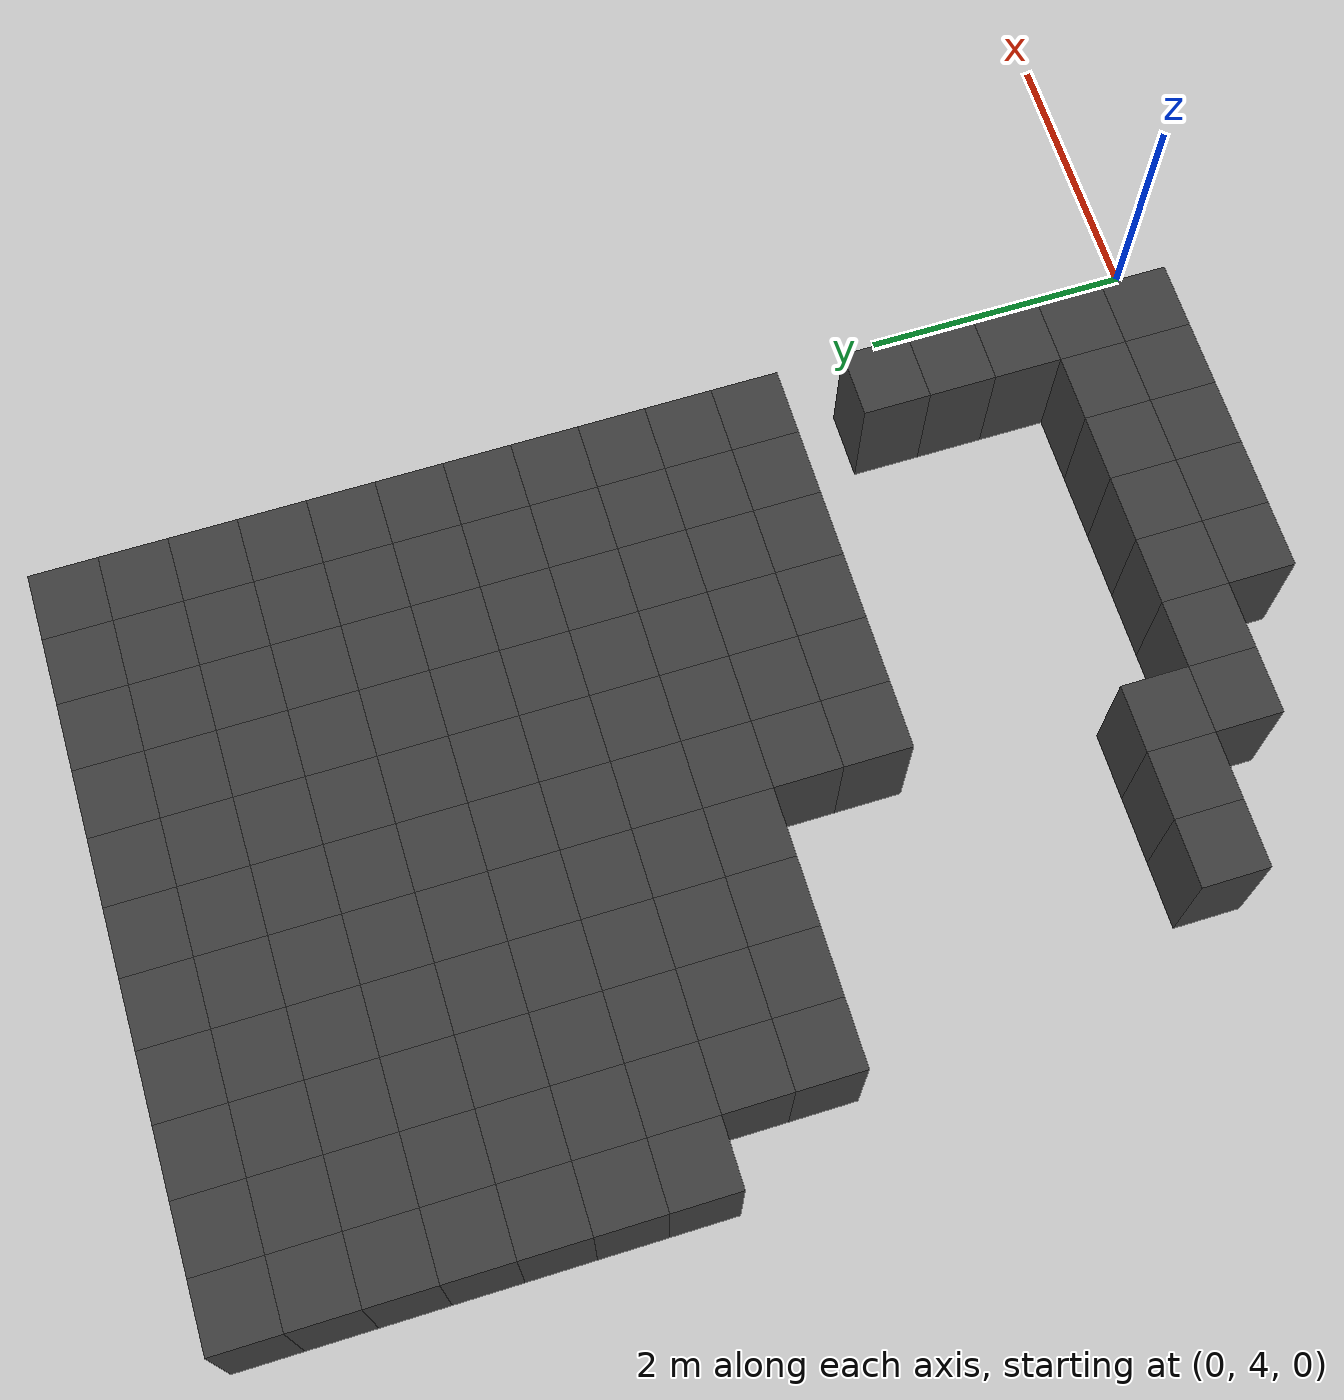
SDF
<sdf version="1.7">
 <world name="map_11672">
  <model name="ground_plane">
   <static>true</static>
   <link name="link">
    <collision name="collision">
     <geometry><plane><normal>0 0 1</normal><size>200 200</size></plane></geometry>
    </collision>
    <visual name="visual">
     <geometry><plane><normal>0 0 1</normal><size>200 200</size></plane></geometry>
     <material><ambient>0.8 0.8 0.8 1</ambient><diffuse>0.8 0.8 0.8 1</diffuse></material>
    </visual>
   </link>
  </model>
  <model name="maze_environment">
   <static>true</static>
   <link name="wall_13">
    <pose>-5.750 12.250 0.500 0 0 0</pose>
    <collision name="col"><geometry><box><size>0.5 0.5 1.0</size></box></geometry></collision>
    <visual name="vis">
     <geometry><box><size>0.5 0.5 1.0</size></box></geometry>
     <material><ambient>0.15 0.15 0.15 1</ambient><diffuse>0.25 0.25 0.25 1</diffuse></material>
    </visual>
   </link>
   <link name="wall_14">
    <pose>-5.250 12.250 0.500 0 0 0</pose>
    <collision name="col"><geometry><box><size>0.5 0.5 1.0</size></box></geometry></collision>
    <visual name="vis">
     <geometry><box><size>0.5 0.5 1.0</size></box></geometry>
     <material><ambient>0.15 0.15 0.15 1</ambient><diffuse>0.25 0.25 0.25 1</diffuse></material>
    </visual>
   </link>
   <link name="wall_15">
    <pose>-4.750 12.250 0.500 0 0 0</pose>
    <collision name="col"><geometry><box><size>0.5 0.5 1.0</size></box></geometry></collision>
    <visual name="vis">
     <geometry><box><size>0.5 0.5 1.0</size></box></geometry>
     <material><ambient>0.15 0.15 0.15 1</ambient><diffuse>0.25 0.25 0.25 1</diffuse></material>
    </visual>
   </link>
   <link name="wall_16">
    <pose>-4.250 12.250 0.500 0 0 0</pose>
    <collision name="col"><geometry><box><size>0.5 0.5 1.0</size></box></geometry></collision>
    <visual name="vis">
     <geometry><box><size>0.5 0.5 1.0</size></box></geometry>
     <material><ambient>0.15 0.15 0.15 1</ambient><diffuse>0.25 0.25 0.25 1</diffuse></material>
    </visual>
   </link>
   <link name="wall_17">
    <pose>-3.750 12.250 0.500 0 0 0</pose>
    <collision name="col"><geometry><box><size>0.5 0.5 1.0</size></box></geometry></collision>
    <visual name="vis">
     <geometry><box><size>0.5 0.5 1.0</size></box></geometry>
     <material><ambient>0.15 0.15 0.15 1</ambient><diffuse>0.25 0.25 0.25 1</diffuse></material>
    </visual>
   </link>
   <link name="wall_18">
    <pose>-3.250 12.250 0.500 0 0 0</pose>
    <collision name="col"><geometry><box><size>0.5 0.5 1.0</size></box></geometry></collision>
    <visual name="vis">
     <geometry><box><size>0.5 0.5 1.0</size></box></geometry>
     <material><ambient>0.15 0.15 0.15 1</ambient><diffuse>0.25 0.25 0.25 1</diffuse></material>
    </visual>
   </link>
   <link name="wall_19">
    <pose>-2.750 12.250 0.500 0 0 0</pose>
    <collision name="col"><geometry><box><size>0.5 0.5 1.0</size></box></geometry></collision>
    <visual name="vis">
     <geometry><box><size>0.5 0.5 1.0</size></box></geometry>
     <material><ambient>0.15 0.15 0.15 1</ambient><diffuse>0.25 0.25 0.25 1</diffuse></material>
    </visual>
   </link>
   <link name="wall_20">
    <pose>-2.250 12.250 0.500 0 0 0</pose>
    <collision name="col"><geometry><box><size>0.5 0.5 1.0</size></box></geometry></collision>
    <visual name="vis">
     <geometry><box><size>0.5 0.5 1.0</size></box></geometry>
     <material><ambient>0.15 0.15 0.15 1</ambient><diffuse>0.25 0.25 0.25 1</diffuse></material>
    </visual>
   </link>
   <link name="wall_21">
    <pose>-1.750 12.250 0.500 0 0 0</pose>
    <collision name="col"><geometry><box><size>0.5 0.5 1.0</size></box></geometry></collision>
    <visual name="vis">
     <geometry><box><size>0.5 0.5 1.0</size></box></geometry>
     <material><ambient>0.15 0.15 0.15 1</ambient><diffuse>0.25 0.25 0.25 1</diffuse></material>
    </visual>
   </link>
   <link name="wall_22">
    <pose>-1.250 12.250 0.500 0 0 0</pose>
    <collision name="col"><geometry><box><size>0.5 0.5 1.0</size></box></geometry></collision>
    <visual name="vis">
     <geometry><box><size>0.5 0.5 1.0</size></box></geometry>
     <material><ambient>0.15 0.15 0.15 1</ambient><diffuse>0.25 0.25 0.25 1</diffuse></material>
    </visual>
   </link>
   <link name="wall_23">
    <pose>-0.750 12.250 0.500 0 0 0</pose>
    <collision name="col"><geometry><box><size>0.5 0.5 1.0</size></box></geometry></collision>
    <visual name="vis">
     <geometry><box><size>0.5 0.5 1.0</size></box></geometry>
     <material><ambient>0.15 0.15 0.15 1</ambient><diffuse>0.25 0.25 0.25 1</diffuse></material>
    </visual>
   </link>
   <link name="wall_60">
    <pose>-5.750 11.750 0.500 0 0 0</pose>
    <collision name="col"><geometry><box><size>0.5 0.5 1.0</size></box></geometry></collision>
    <visual name="vis">
     <geometry><box><size>0.5 0.5 1.0</size></box></geometry>
     <material><ambient>0.15 0.15 0.15 1</ambient><diffuse>0.25 0.25 0.25 1</diffuse></material>
    </visual>
   </link>
   <link name="wall_61">
    <pose>-5.250 11.750 0.500 0 0 0</pose>
    <collision name="col"><geometry><box><size>0.5 0.5 1.0</size></box></geometry></collision>
    <visual name="vis">
     <geometry><box><size>0.5 0.5 1.0</size></box></geometry>
     <material><ambient>0.15 0.15 0.15 1</ambient><diffuse>0.25 0.25 0.25 1</diffuse></material>
    </visual>
   </link>
   <link name="wall_62">
    <pose>-4.750 11.750 0.500 0 0 0</pose>
    <collision name="col"><geometry><box><size>0.5 0.5 1.0</size></box></geometry></collision>
    <visual name="vis">
     <geometry><box><size>0.5 0.5 1.0</size></box></geometry>
     <material><ambient>0.15 0.15 0.15 1</ambient><diffuse>0.25 0.25 0.25 1</diffuse></material>
    </visual>
   </link>
   <link name="wall_63">
    <pose>-4.250 11.750 0.500 0 0 0</pose>
    <collision name="col"><geometry><box><size>0.5 0.5 1.0</size></box></geometry></collision>
    <visual name="vis">
     <geometry><box><size>0.5 0.5 1.0</size></box></geometry>
     <material><ambient>0.15 0.15 0.15 1</ambient><diffuse>0.25 0.25 0.25 1</diffuse></material>
    </visual>
   </link>
   <link name="wall_64">
    <pose>-3.750 11.750 0.500 0 0 0</pose>
    <collision name="col"><geometry><box><size>0.5 0.5 1.0</size></box></geometry></collision>
    <visual name="vis">
     <geometry><box><size>0.5 0.5 1.0</size></box></geometry>
     <material><ambient>0.15 0.15 0.15 1</ambient><diffuse>0.25 0.25 0.25 1</diffuse></material>
    </visual>
   </link>
   <link name="wall_65">
    <pose>-3.250 11.750 0.500 0 0 0</pose>
    <collision name="col"><geometry><box><size>0.5 0.5 1.0</size></box></geometry></collision>
    <visual name="vis">
     <geometry><box><size>0.5 0.5 1.0</size></box></geometry>
     <material><ambient>0.15 0.15 0.15 1</ambient><diffuse>0.25 0.25 0.25 1</diffuse></material>
    </visual>
   </link>
   <link name="wall_66">
    <pose>-2.750 11.750 0.500 0 0 0</pose>
    <collision name="col"><geometry><box><size>0.5 0.5 1.0</size></box></geometry></collision>
    <visual name="vis">
     <geometry><box><size>0.5 0.5 1.0</size></box></geometry>
     <material><ambient>0.15 0.15 0.15 1</ambient><diffuse>0.25 0.25 0.25 1</diffuse></material>
    </visual>
   </link>
   <link name="wall_67">
    <pose>-2.250 11.750 0.500 0 0 0</pose>
    <collision name="col"><geometry><box><size>0.5 0.5 1.0</size></box></geometry></collision>
    <visual name="vis">
     <geometry><box><size>0.5 0.5 1.0</size></box></geometry>
     <material><ambient>0.15 0.15 0.15 1</ambient><diffuse>0.25 0.25 0.25 1</diffuse></material>
    </visual>
   </link>
   <link name="wall_68">
    <pose>-1.750 11.750 0.500 0 0 0</pose>
    <collision name="col"><geometry><box><size>0.5 0.5 1.0</size></box></geometry></collision>
    <visual name="vis">
     <geometry><box><size>0.5 0.5 1.0</size></box></geometry>
     <material><ambient>0.15 0.15 0.15 1</ambient><diffuse>0.25 0.25 0.25 1</diffuse></material>
    </visual>
   </link>
   <link name="wall_69">
    <pose>-1.250 11.750 0.500 0 0 0</pose>
    <collision name="col"><geometry><box><size>0.5 0.5 1.0</size></box></geometry></collision>
    <visual name="vis">
     <geometry><box><size>0.5 0.5 1.0</size></box></geometry>
     <material><ambient>0.15 0.15 0.15 1</ambient><diffuse>0.25 0.25 0.25 1</diffuse></material>
    </visual>
   </link>
   <link name="wall_70">
    <pose>-0.750 11.750 0.500 0 0 0</pose>
    <collision name="col"><geometry><box><size>0.5 0.5 1.0</size></box></geometry></collision>
    <visual name="vis">
     <geometry><box><size>0.5 0.5 1.0</size></box></geometry>
     <material><ambient>0.15 0.15 0.15 1</ambient><diffuse>0.25 0.25 0.25 1</diffuse></material>
    </visual>
   </link>
   <link name="wall_107">
    <pose>-5.750 11.250 0.500 0 0 0</pose>
    <collision name="col"><geometry><box><size>0.5 0.5 1.0</size></box></geometry></collision>
    <visual name="vis">
     <geometry><box><size>0.5 0.5 1.0</size></box></geometry>
     <material><ambient>0.15 0.15 0.15 1</ambient><diffuse>0.25 0.25 0.25 1</diffuse></material>
    </visual>
   </link>
   <link name="wall_108">
    <pose>-5.250 11.250 0.500 0 0 0</pose>
    <collision name="col"><geometry><box><size>0.5 0.5 1.0</size></box></geometry></collision>
    <visual name="vis">
     <geometry><box><size>0.5 0.5 1.0</size></box></geometry>
     <material><ambient>0.15 0.15 0.15 1</ambient><diffuse>0.25 0.25 0.25 1</diffuse></material>
    </visual>
   </link>
   <link name="wall_109">
    <pose>-4.750 11.250 0.500 0 0 0</pose>
    <collision name="col"><geometry><box><size>0.5 0.5 1.0</size></box></geometry></collision>
    <visual name="vis">
     <geometry><box><size>0.5 0.5 1.0</size></box></geometry>
     <material><ambient>0.15 0.15 0.15 1</ambient><diffuse>0.25 0.25 0.25 1</diffuse></material>
    </visual>
   </link>
   <link name="wall_110">
    <pose>-4.250 11.250 0.500 0 0 0</pose>
    <collision name="col"><geometry><box><size>0.5 0.5 1.0</size></box></geometry></collision>
    <visual name="vis">
     <geometry><box><size>0.5 0.5 1.0</size></box></geometry>
     <material><ambient>0.15 0.15 0.15 1</ambient><diffuse>0.25 0.25 0.25 1</diffuse></material>
    </visual>
   </link>
   <link name="wall_111">
    <pose>-3.750 11.250 0.500 0 0 0</pose>
    <collision name="col"><geometry><box><size>0.5 0.5 1.0</size></box></geometry></collision>
    <visual name="vis">
     <geometry><box><size>0.5 0.5 1.0</size></box></geometry>
     <material><ambient>0.15 0.15 0.15 1</ambient><diffuse>0.25 0.25 0.25 1</diffuse></material>
    </visual>
   </link>
   <link name="wall_112">
    <pose>-3.250 11.250 0.500 0 0 0</pose>
    <collision name="col"><geometry><box><size>0.5 0.5 1.0</size></box></geometry></collision>
    <visual name="vis">
     <geometry><box><size>0.5 0.5 1.0</size></box></geometry>
     <material><ambient>0.15 0.15 0.15 1</ambient><diffuse>0.25 0.25 0.25 1</diffuse></material>
    </visual>
   </link>
   <link name="wall_113">
    <pose>-2.750 11.250 0.500 0 0 0</pose>
    <collision name="col"><geometry><box><size>0.5 0.5 1.0</size></box></geometry></collision>
    <visual name="vis">
     <geometry><box><size>0.5 0.5 1.0</size></box></geometry>
     <material><ambient>0.15 0.15 0.15 1</ambient><diffuse>0.25 0.25 0.25 1</diffuse></material>
    </visual>
   </link>
   <link name="wall_114">
    <pose>-2.250 11.250 0.500 0 0 0</pose>
    <collision name="col"><geometry><box><size>0.5 0.5 1.0</size></box></geometry></collision>
    <visual name="vis">
     <geometry><box><size>0.5 0.5 1.0</size></box></geometry>
     <material><ambient>0.15 0.15 0.15 1</ambient><diffuse>0.25 0.25 0.25 1</diffuse></material>
    </visual>
   </link>
   <link name="wall_115">
    <pose>-1.750 11.250 0.500 0 0 0</pose>
    <collision name="col"><geometry><box><size>0.5 0.5 1.0</size></box></geometry></collision>
    <visual name="vis">
     <geometry><box><size>0.5 0.5 1.0</size></box></geometry>
     <material><ambient>0.15 0.15 0.15 1</ambient><diffuse>0.25 0.25 0.25 1</diffuse></material>
    </visual>
   </link>
   <link name="wall_116">
    <pose>-1.250 11.250 0.500 0 0 0</pose>
    <collision name="col"><geometry><box><size>0.5 0.5 1.0</size></box></geometry></collision>
    <visual name="vis">
     <geometry><box><size>0.5 0.5 1.0</size></box></geometry>
     <material><ambient>0.15 0.15 0.15 1</ambient><diffuse>0.25 0.25 0.25 1</diffuse></material>
    </visual>
   </link>
   <link name="wall_117">
    <pose>-0.750 11.250 0.500 0 0 0</pose>
    <collision name="col"><geometry><box><size>0.5 0.5 1.0</size></box></geometry></collision>
    <visual name="vis">
     <geometry><box><size>0.5 0.5 1.0</size></box></geometry>
     <material><ambient>0.15 0.15 0.15 1</ambient><diffuse>0.25 0.25 0.25 1</diffuse></material>
    </visual>
   </link>
   <link name="wall_154">
    <pose>-5.750 10.750 0.500 0 0 0</pose>
    <collision name="col"><geometry><box><size>0.5 0.5 1.0</size></box></geometry></collision>
    <visual name="vis">
     <geometry><box><size>0.5 0.5 1.0</size></box></geometry>
     <material><ambient>0.15 0.15 0.15 1</ambient><diffuse>0.25 0.25 0.25 1</diffuse></material>
    </visual>
   </link>
   <link name="wall_155">
    <pose>-5.250 10.750 0.500 0 0 0</pose>
    <collision name="col"><geometry><box><size>0.5 0.5 1.0</size></box></geometry></collision>
    <visual name="vis">
     <geometry><box><size>0.5 0.5 1.0</size></box></geometry>
     <material><ambient>0.15 0.15 0.15 1</ambient><diffuse>0.25 0.25 0.25 1</diffuse></material>
    </visual>
   </link>
   <link name="wall_156">
    <pose>-4.750 10.750 0.500 0 0 0</pose>
    <collision name="col"><geometry><box><size>0.5 0.5 1.0</size></box></geometry></collision>
    <visual name="vis">
     <geometry><box><size>0.5 0.5 1.0</size></box></geometry>
     <material><ambient>0.15 0.15 0.15 1</ambient><diffuse>0.25 0.25 0.25 1</diffuse></material>
    </visual>
   </link>
   <link name="wall_157">
    <pose>-4.250 10.750 0.500 0 0 0</pose>
    <collision name="col"><geometry><box><size>0.5 0.5 1.0</size></box></geometry></collision>
    <visual name="vis">
     <geometry><box><size>0.5 0.5 1.0</size></box></geometry>
     <material><ambient>0.15 0.15 0.15 1</ambient><diffuse>0.25 0.25 0.25 1</diffuse></material>
    </visual>
   </link>
   <link name="wall_158">
    <pose>-3.750 10.750 0.500 0 0 0</pose>
    <collision name="col"><geometry><box><size>0.5 0.5 1.0</size></box></geometry></collision>
    <visual name="vis">
     <geometry><box><size>0.5 0.5 1.0</size></box></geometry>
     <material><ambient>0.15 0.15 0.15 1</ambient><diffuse>0.25 0.25 0.25 1</diffuse></material>
    </visual>
   </link>
   <link name="wall_159">
    <pose>-3.250 10.750 0.500 0 0 0</pose>
    <collision name="col"><geometry><box><size>0.5 0.5 1.0</size></box></geometry></collision>
    <visual name="vis">
     <geometry><box><size>0.5 0.5 1.0</size></box></geometry>
     <material><ambient>0.15 0.15 0.15 1</ambient><diffuse>0.25 0.25 0.25 1</diffuse></material>
    </visual>
   </link>
   <link name="wall_160">
    <pose>-2.750 10.750 0.500 0 0 0</pose>
    <collision name="col"><geometry><box><size>0.5 0.5 1.0</size></box></geometry></collision>
    <visual name="vis">
     <geometry><box><size>0.5 0.5 1.0</size></box></geometry>
     <material><ambient>0.15 0.15 0.15 1</ambient><diffuse>0.25 0.25 0.25 1</diffuse></material>
    </visual>
   </link>
   <link name="wall_161">
    <pose>-2.250 10.750 0.500 0 0 0</pose>
    <collision name="col"><geometry><box><size>0.5 0.5 1.0</size></box></geometry></collision>
    <visual name="vis">
     <geometry><box><size>0.5 0.5 1.0</size></box></geometry>
     <material><ambient>0.15 0.15 0.15 1</ambient><diffuse>0.25 0.25 0.25 1</diffuse></material>
    </visual>
   </link>
   <link name="wall_162">
    <pose>-1.750 10.750 0.500 0 0 0</pose>
    <collision name="col"><geometry><box><size>0.5 0.5 1.0</size></box></geometry></collision>
    <visual name="vis">
     <geometry><box><size>0.5 0.5 1.0</size></box></geometry>
     <material><ambient>0.15 0.15 0.15 1</ambient><diffuse>0.25 0.25 0.25 1</diffuse></material>
    </visual>
   </link>
   <link name="wall_163">
    <pose>-1.250 10.750 0.500 0 0 0</pose>
    <collision name="col"><geometry><box><size>0.5 0.5 1.0</size></box></geometry></collision>
    <visual name="vis">
     <geometry><box><size>0.5 0.5 1.0</size></box></geometry>
     <material><ambient>0.15 0.15 0.15 1</ambient><diffuse>0.25 0.25 0.25 1</diffuse></material>
    </visual>
   </link>
   <link name="wall_164">
    <pose>-0.750 10.750 0.500 0 0 0</pose>
    <collision name="col"><geometry><box><size>0.5 0.5 1.0</size></box></geometry></collision>
    <visual name="vis">
     <geometry><box><size>0.5 0.5 1.0</size></box></geometry>
     <material><ambient>0.15 0.15 0.15 1</ambient><diffuse>0.25 0.25 0.25 1</diffuse></material>
    </visual>
   </link>
   <link name="wall_203">
    <pose>-5.750 10.250 0.500 0 0 0</pose>
    <collision name="col"><geometry><box><size>0.5 0.5 1.0</size></box></geometry></collision>
    <visual name="vis">
     <geometry><box><size>0.5 0.5 1.0</size></box></geometry>
     <material><ambient>0.15 0.15 0.15 1</ambient><diffuse>0.25 0.25 0.25 1</diffuse></material>
    </visual>
   </link>
   <link name="wall_204">
    <pose>-5.250 10.250 0.500 0 0 0</pose>
    <collision name="col"><geometry><box><size>0.5 0.5 1.0</size></box></geometry></collision>
    <visual name="vis">
     <geometry><box><size>0.5 0.5 1.0</size></box></geometry>
     <material><ambient>0.15 0.15 0.15 1</ambient><diffuse>0.25 0.25 0.25 1</diffuse></material>
    </visual>
   </link>
   <link name="wall_205">
    <pose>-4.750 10.250 0.500 0 0 0</pose>
    <collision name="col"><geometry><box><size>0.5 0.5 1.0</size></box></geometry></collision>
    <visual name="vis">
     <geometry><box><size>0.5 0.5 1.0</size></box></geometry>
     <material><ambient>0.15 0.15 0.15 1</ambient><diffuse>0.25 0.25 0.25 1</diffuse></material>
    </visual>
   </link>
   <link name="wall_206">
    <pose>-4.250 10.250 0.500 0 0 0</pose>
    <collision name="col"><geometry><box><size>0.5 0.5 1.0</size></box></geometry></collision>
    <visual name="vis">
     <geometry><box><size>0.5 0.5 1.0</size></box></geometry>
     <material><ambient>0.15 0.15 0.15 1</ambient><diffuse>0.25 0.25 0.25 1</diffuse></material>
    </visual>
   </link>
   <link name="wall_207">
    <pose>-3.750 10.250 0.500 0 0 0</pose>
    <collision name="col"><geometry><box><size>0.5 0.5 1.0</size></box></geometry></collision>
    <visual name="vis">
     <geometry><box><size>0.5 0.5 1.0</size></box></geometry>
     <material><ambient>0.15 0.15 0.15 1</ambient><diffuse>0.25 0.25 0.25 1</diffuse></material>
    </visual>
   </link>
   <link name="wall_208">
    <pose>-3.250 10.250 0.500 0 0 0</pose>
    <collision name="col"><geometry><box><size>0.5 0.5 1.0</size></box></geometry></collision>
    <visual name="vis">
     <geometry><box><size>0.5 0.5 1.0</size></box></geometry>
     <material><ambient>0.15 0.15 0.15 1</ambient><diffuse>0.25 0.25 0.25 1</diffuse></material>
    </visual>
   </link>
   <link name="wall_209">
    <pose>-2.750 10.250 0.500 0 0 0</pose>
    <collision name="col"><geometry><box><size>0.5 0.5 1.0</size></box></geometry></collision>
    <visual name="vis">
     <geometry><box><size>0.5 0.5 1.0</size></box></geometry>
     <material><ambient>0.15 0.15 0.15 1</ambient><diffuse>0.25 0.25 0.25 1</diffuse></material>
    </visual>
   </link>
   <link name="wall_210">
    <pose>-2.250 10.250 0.500 0 0 0</pose>
    <collision name="col"><geometry><box><size>0.5 0.5 1.0</size></box></geometry></collision>
    <visual name="vis">
     <geometry><box><size>0.5 0.5 1.0</size></box></geometry>
     <material><ambient>0.15 0.15 0.15 1</ambient><diffuse>0.25 0.25 0.25 1</diffuse></material>
    </visual>
   </link>
   <link name="wall_211">
    <pose>-1.750 10.250 0.500 0 0 0</pose>
    <collision name="col"><geometry><box><size>0.5 0.5 1.0</size></box></geometry></collision>
    <visual name="vis">
     <geometry><box><size>0.5 0.5 1.0</size></box></geometry>
     <material><ambient>0.15 0.15 0.15 1</ambient><diffuse>0.25 0.25 0.25 1</diffuse></material>
    </visual>
   </link>
   <link name="wall_212">
    <pose>-1.250 10.250 0.500 0 0 0</pose>
    <collision name="col"><geometry><box><size>0.5 0.5 1.0</size></box></geometry></collision>
    <visual name="vis">
     <geometry><box><size>0.5 0.5 1.0</size></box></geometry>
     <material><ambient>0.15 0.15 0.15 1</ambient><diffuse>0.25 0.25 0.25 1</diffuse></material>
    </visual>
   </link>
   <link name="wall_213">
    <pose>-0.750 10.250 0.500 0 0 0</pose>
    <collision name="col"><geometry><box><size>0.5 0.5 1.0</size></box></geometry></collision>
    <visual name="vis">
     <geometry><box><size>0.5 0.5 1.0</size></box></geometry>
     <material><ambient>0.15 0.15 0.15 1</ambient><diffuse>0.25 0.25 0.25 1</diffuse></material>
    </visual>
   </link>
   <link name="wall_252">
    <pose>-5.750 9.750 0.500 0 0 0</pose>
    <collision name="col"><geometry><box><size>0.5 0.5 1.0</size></box></geometry></collision>
    <visual name="vis">
     <geometry><box><size>0.5 0.5 1.0</size></box></geometry>
     <material><ambient>0.15 0.15 0.15 1</ambient><diffuse>0.25 0.25 0.25 1</diffuse></material>
    </visual>
   </link>
   <link name="wall_253">
    <pose>-5.250 9.750 0.500 0 0 0</pose>
    <collision name="col"><geometry><box><size>0.5 0.5 1.0</size></box></geometry></collision>
    <visual name="vis">
     <geometry><box><size>0.5 0.5 1.0</size></box></geometry>
     <material><ambient>0.15 0.15 0.15 1</ambient><diffuse>0.25 0.25 0.25 1</diffuse></material>
    </visual>
   </link>
   <link name="wall_254">
    <pose>-4.750 9.750 0.500 0 0 0</pose>
    <collision name="col"><geometry><box><size>0.5 0.5 1.0</size></box></geometry></collision>
    <visual name="vis">
     <geometry><box><size>0.5 0.5 1.0</size></box></geometry>
     <material><ambient>0.15 0.15 0.15 1</ambient><diffuse>0.25 0.25 0.25 1</diffuse></material>
    </visual>
   </link>
   <link name="wall_255">
    <pose>-4.250 9.750 0.500 0 0 0</pose>
    <collision name="col"><geometry><box><size>0.5 0.5 1.0</size></box></geometry></collision>
    <visual name="vis">
     <geometry><box><size>0.5 0.5 1.0</size></box></geometry>
     <material><ambient>0.15 0.15 0.15 1</ambient><diffuse>0.25 0.25 0.25 1</diffuse></material>
    </visual>
   </link>
   <link name="wall_256">
    <pose>-3.750 9.750 0.500 0 0 0</pose>
    <collision name="col"><geometry><box><size>0.5 0.5 1.0</size></box></geometry></collision>
    <visual name="vis">
     <geometry><box><size>0.5 0.5 1.0</size></box></geometry>
     <material><ambient>0.15 0.15 0.15 1</ambient><diffuse>0.25 0.25 0.25 1</diffuse></material>
    </visual>
   </link>
   <link name="wall_257">
    <pose>-3.250 9.750 0.500 0 0 0</pose>
    <collision name="col"><geometry><box><size>0.5 0.5 1.0</size></box></geometry></collision>
    <visual name="vis">
     <geometry><box><size>0.5 0.5 1.0</size></box></geometry>
     <material><ambient>0.15 0.15 0.15 1</ambient><diffuse>0.25 0.25 0.25 1</diffuse></material>
    </visual>
   </link>
   <link name="wall_258">
    <pose>-2.750 9.750 0.500 0 0 0</pose>
    <collision name="col"><geometry><box><size>0.5 0.5 1.0</size></box></geometry></collision>
    <visual name="vis">
     <geometry><box><size>0.5 0.5 1.0</size></box></geometry>
     <material><ambient>0.15 0.15 0.15 1</ambient><diffuse>0.25 0.25 0.25 1</diffuse></material>
    </visual>
   </link>
   <link name="wall_259">
    <pose>-2.250 9.750 0.500 0 0 0</pose>
    <collision name="col"><geometry><box><size>0.5 0.5 1.0</size></box></geometry></collision>
    <visual name="vis">
     <geometry><box><size>0.5 0.5 1.0</size></box></geometry>
     <material><ambient>0.15 0.15 0.15 1</ambient><diffuse>0.25 0.25 0.25 1</diffuse></material>
    </visual>
   </link>
   <link name="wall_260">
    <pose>-1.750 9.750 0.500 0 0 0</pose>
    <collision name="col"><geometry><box><size>0.5 0.5 1.0</size></box></geometry></collision>
    <visual name="vis">
     <geometry><box><size>0.5 0.5 1.0</size></box></geometry>
     <material><ambient>0.15 0.15 0.15 1</ambient><diffuse>0.25 0.25 0.25 1</diffuse></material>
    </visual>
   </link>
   <link name="wall_261">
    <pose>-1.250 9.750 0.500 0 0 0</pose>
    <collision name="col"><geometry><box><size>0.5 0.5 1.0</size></box></geometry></collision>
    <visual name="vis">
     <geometry><box><size>0.5 0.5 1.0</size></box></geometry>
     <material><ambient>0.15 0.15 0.15 1</ambient><diffuse>0.25 0.25 0.25 1</diffuse></material>
    </visual>
   </link>
   <link name="wall_262">
    <pose>-0.750 9.750 0.500 0 0 0</pose>
    <collision name="col"><geometry><box><size>0.5 0.5 1.0</size></box></geometry></collision>
    <visual name="vis">
     <geometry><box><size>0.5 0.5 1.0</size></box></geometry>
     <material><ambient>0.15 0.15 0.15 1</ambient><diffuse>0.25 0.25 0.25 1</diffuse></material>
    </visual>
   </link>
   <link name="wall_301">
    <pose>-5.750 9.250 0.500 0 0 0</pose>
    <collision name="col"><geometry><box><size>0.5 0.5 1.0</size></box></geometry></collision>
    <visual name="vis">
     <geometry><box><size>0.5 0.5 1.0</size></box></geometry>
     <material><ambient>0.15 0.15 0.15 1</ambient><diffuse>0.25 0.25 0.25 1</diffuse></material>
    </visual>
   </link>
   <link name="wall_302">
    <pose>-5.250 9.250 0.500 0 0 0</pose>
    <collision name="col"><geometry><box><size>0.5 0.5 1.0</size></box></geometry></collision>
    <visual name="vis">
     <geometry><box><size>0.5 0.5 1.0</size></box></geometry>
     <material><ambient>0.15 0.15 0.15 1</ambient><diffuse>0.25 0.25 0.25 1</diffuse></material>
    </visual>
   </link>
   <link name="wall_303">
    <pose>-4.750 9.250 0.500 0 0 0</pose>
    <collision name="col"><geometry><box><size>0.5 0.5 1.0</size></box></geometry></collision>
    <visual name="vis">
     <geometry><box><size>0.5 0.5 1.0</size></box></geometry>
     <material><ambient>0.15 0.15 0.15 1</ambient><diffuse>0.25 0.25 0.25 1</diffuse></material>
    </visual>
   </link>
   <link name="wall_304">
    <pose>-4.250 9.250 0.500 0 0 0</pose>
    <collision name="col"><geometry><box><size>0.5 0.5 1.0</size></box></geometry></collision>
    <visual name="vis">
     <geometry><box><size>0.5 0.5 1.0</size></box></geometry>
     <material><ambient>0.15 0.15 0.15 1</ambient><diffuse>0.25 0.25 0.25 1</diffuse></material>
    </visual>
   </link>
   <link name="wall_305">
    <pose>-3.750 9.250 0.500 0 0 0</pose>
    <collision name="col"><geometry><box><size>0.5 0.5 1.0</size></box></geometry></collision>
    <visual name="vis">
     <geometry><box><size>0.5 0.5 1.0</size></box></geometry>
     <material><ambient>0.15 0.15 0.15 1</ambient><diffuse>0.25 0.25 0.25 1</diffuse></material>
    </visual>
   </link>
   <link name="wall_306">
    <pose>-3.250 9.250 0.500 0 0 0</pose>
    <collision name="col"><geometry><box><size>0.5 0.5 1.0</size></box></geometry></collision>
    <visual name="vis">
     <geometry><box><size>0.5 0.5 1.0</size></box></geometry>
     <material><ambient>0.15 0.15 0.15 1</ambient><diffuse>0.25 0.25 0.25 1</diffuse></material>
    </visual>
   </link>
   <link name="wall_307">
    <pose>-2.750 9.250 0.500 0 0 0</pose>
    <collision name="col"><geometry><box><size>0.5 0.5 1.0</size></box></geometry></collision>
    <visual name="vis">
     <geometry><box><size>0.5 0.5 1.0</size></box></geometry>
     <material><ambient>0.15 0.15 0.15 1</ambient><diffuse>0.25 0.25 0.25 1</diffuse></material>
    </visual>
   </link>
   <link name="wall_308">
    <pose>-2.250 9.250 0.500 0 0 0</pose>
    <collision name="col"><geometry><box><size>0.5 0.5 1.0</size></box></geometry></collision>
    <visual name="vis">
     <geometry><box><size>0.5 0.5 1.0</size></box></geometry>
     <material><ambient>0.15 0.15 0.15 1</ambient><diffuse>0.25 0.25 0.25 1</diffuse></material>
    </visual>
   </link>
   <link name="wall_309">
    <pose>-1.750 9.250 0.500 0 0 0</pose>
    <collision name="col"><geometry><box><size>0.5 0.5 1.0</size></box></geometry></collision>
    <visual name="vis">
     <geometry><box><size>0.5 0.5 1.0</size></box></geometry>
     <material><ambient>0.15 0.15 0.15 1</ambient><diffuse>0.25 0.25 0.25 1</diffuse></material>
    </visual>
   </link>
   <link name="wall_310">
    <pose>-1.250 9.250 0.500 0 0 0</pose>
    <collision name="col"><geometry><box><size>0.5 0.5 1.0</size></box></geometry></collision>
    <visual name="vis">
     <geometry><box><size>0.5 0.5 1.0</size></box></geometry>
     <material><ambient>0.15 0.15 0.15 1</ambient><diffuse>0.25 0.25 0.25 1</diffuse></material>
    </visual>
   </link>
   <link name="wall_311">
    <pose>-0.750 9.250 0.500 0 0 0</pose>
    <collision name="col"><geometry><box><size>0.5 0.5 1.0</size></box></geometry></collision>
    <visual name="vis">
     <geometry><box><size>0.5 0.5 1.0</size></box></geometry>
     <material><ambient>0.15 0.15 0.15 1</ambient><diffuse>0.25 0.25 0.25 1</diffuse></material>
    </visual>
   </link>
   <link name="wall_344">
    <pose>-5.250 8.750 0.500 0 0 0</pose>
    <collision name="col"><geometry><box><size>0.5 0.5 1.0</size></box></geometry></collision>
    <visual name="vis">
     <geometry><box><size>0.5 0.5 1.0</size></box></geometry>
     <material><ambient>0.15 0.15 0.15 1</ambient><diffuse>0.25 0.25 0.25 1</diffuse></material>
    </visual>
   </link>
   <link name="wall_345">
    <pose>-4.750 8.750 0.500 0 0 0</pose>
    <collision name="col"><geometry><box><size>0.5 0.5 1.0</size></box></geometry></collision>
    <visual name="vis">
     <geometry><box><size>0.5 0.5 1.0</size></box></geometry>
     <material><ambient>0.15 0.15 0.15 1</ambient><diffuse>0.25 0.25 0.25 1</diffuse></material>
    </visual>
   </link>
   <link name="wall_346">
    <pose>-4.250 8.750 0.500 0 0 0</pose>
    <collision name="col"><geometry><box><size>0.5 0.5 1.0</size></box></geometry></collision>
    <visual name="vis">
     <geometry><box><size>0.5 0.5 1.0</size></box></geometry>
     <material><ambient>0.15 0.15 0.15 1</ambient><diffuse>0.25 0.25 0.25 1</diffuse></material>
    </visual>
   </link>
   <link name="wall_347">
    <pose>-3.750 8.750 0.500 0 0 0</pose>
    <collision name="col"><geometry><box><size>0.5 0.5 1.0</size></box></geometry></collision>
    <visual name="vis">
     <geometry><box><size>0.5 0.5 1.0</size></box></geometry>
     <material><ambient>0.15 0.15 0.15 1</ambient><diffuse>0.25 0.25 0.25 1</diffuse></material>
    </visual>
   </link>
   <link name="wall_348">
    <pose>-3.250 8.750 0.500 0 0 0</pose>
    <collision name="col"><geometry><box><size>0.5 0.5 1.0</size></box></geometry></collision>
    <visual name="vis">
     <geometry><box><size>0.5 0.5 1.0</size></box></geometry>
     <material><ambient>0.15 0.15 0.15 1</ambient><diffuse>0.25 0.25 0.25 1</diffuse></material>
    </visual>
   </link>
   <link name="wall_349">
    <pose>-2.750 8.750 0.500 0 0 0</pose>
    <collision name="col"><geometry><box><size>0.5 0.5 1.0</size></box></geometry></collision>
    <visual name="vis">
     <geometry><box><size>0.5 0.5 1.0</size></box></geometry>
     <material><ambient>0.15 0.15 0.15 1</ambient><diffuse>0.25 0.25 0.25 1</diffuse></material>
    </visual>
   </link>
   <link name="wall_350">
    <pose>-2.250 8.750 0.500 0 0 0</pose>
    <collision name="col"><geometry><box><size>0.5 0.5 1.0</size></box></geometry></collision>
    <visual name="vis">
     <geometry><box><size>0.5 0.5 1.0</size></box></geometry>
     <material><ambient>0.15 0.15 0.15 1</ambient><diffuse>0.25 0.25 0.25 1</diffuse></material>
    </visual>
   </link>
   <link name="wall_351">
    <pose>-1.750 8.750 0.500 0 0 0</pose>
    <collision name="col"><geometry><box><size>0.5 0.5 1.0</size></box></geometry></collision>
    <visual name="vis">
     <geometry><box><size>0.5 0.5 1.0</size></box></geometry>
     <material><ambient>0.15 0.15 0.15 1</ambient><diffuse>0.25 0.25 0.25 1</diffuse></material>
    </visual>
   </link>
   <link name="wall_352">
    <pose>-1.250 8.750 0.500 0 0 0</pose>
    <collision name="col"><geometry><box><size>0.5 0.5 1.0</size></box></geometry></collision>
    <visual name="vis">
     <geometry><box><size>0.5 0.5 1.0</size></box></geometry>
     <material><ambient>0.15 0.15 0.15 1</ambient><diffuse>0.25 0.25 0.25 1</diffuse></material>
    </visual>
   </link>
   <link name="wall_353">
    <pose>-0.750 8.750 0.500 0 0 0</pose>
    <collision name="col"><geometry><box><size>0.5 0.5 1.0</size></box></geometry></collision>
    <visual name="vis">
     <geometry><box><size>0.5 0.5 1.0</size></box></geometry>
     <material><ambient>0.15 0.15 0.15 1</ambient><diffuse>0.25 0.25 0.25 1</diffuse></material>
    </visual>
   </link>
   <link name="wall_386">
    <pose>-5.250 8.250 0.500 0 0 0</pose>
    <collision name="col"><geometry><box><size>0.5 0.5 1.0</size></box></geometry></collision>
    <visual name="vis">
     <geometry><box><size>0.5 0.5 1.0</size></box></geometry>
     <material><ambient>0.15 0.15 0.15 1</ambient><diffuse>0.25 0.25 0.25 1</diffuse></material>
    </visual>
   </link>
   <link name="wall_387">
    <pose>-4.750 8.250 0.500 0 0 0</pose>
    <collision name="col"><geometry><box><size>0.5 0.5 1.0</size></box></geometry></collision>
    <visual name="vis">
     <geometry><box><size>0.5 0.5 1.0</size></box></geometry>
     <material><ambient>0.15 0.15 0.15 1</ambient><diffuse>0.25 0.25 0.25 1</diffuse></material>
    </visual>
   </link>
   <link name="wall_388">
    <pose>-4.250 8.250 0.500 0 0 0</pose>
    <collision name="col"><geometry><box><size>0.5 0.5 1.0</size></box></geometry></collision>
    <visual name="vis">
     <geometry><box><size>0.5 0.5 1.0</size></box></geometry>
     <material><ambient>0.15 0.15 0.15 1</ambient><diffuse>0.25 0.25 0.25 1</diffuse></material>
    </visual>
   </link>
   <link name="wall_389">
    <pose>-3.750 8.250 0.500 0 0 0</pose>
    <collision name="col"><geometry><box><size>0.5 0.5 1.0</size></box></geometry></collision>
    <visual name="vis">
     <geometry><box><size>0.5 0.5 1.0</size></box></geometry>
     <material><ambient>0.15 0.15 0.15 1</ambient><diffuse>0.25 0.25 0.25 1</diffuse></material>
    </visual>
   </link>
   <link name="wall_390">
    <pose>-3.250 8.250 0.500 0 0 0</pose>
    <collision name="col"><geometry><box><size>0.5 0.5 1.0</size></box></geometry></collision>
    <visual name="vis">
     <geometry><box><size>0.5 0.5 1.0</size></box></geometry>
     <material><ambient>0.15 0.15 0.15 1</ambient><diffuse>0.25 0.25 0.25 1</diffuse></material>
    </visual>
   </link>
   <link name="wall_391">
    <pose>-2.750 8.250 0.500 0 0 0</pose>
    <collision name="col"><geometry><box><size>0.5 0.5 1.0</size></box></geometry></collision>
    <visual name="vis">
     <geometry><box><size>0.5 0.5 1.0</size></box></geometry>
     <material><ambient>0.15 0.15 0.15 1</ambient><diffuse>0.25 0.25 0.25 1</diffuse></material>
    </visual>
   </link>
   <link name="wall_392">
    <pose>-2.250 8.250 0.500 0 0 0</pose>
    <collision name="col"><geometry><box><size>0.5 0.5 1.0</size></box></geometry></collision>
    <visual name="vis">
     <geometry><box><size>0.5 0.5 1.0</size></box></geometry>
     <material><ambient>0.15 0.15 0.15 1</ambient><diffuse>0.25 0.25 0.25 1</diffuse></material>
    </visual>
   </link>
   <link name="wall_393">
    <pose>-1.750 8.250 0.500 0 0 0</pose>
    <collision name="col"><geometry><box><size>0.5 0.5 1.0</size></box></geometry></collision>
    <visual name="vis">
     <geometry><box><size>0.5 0.5 1.0</size></box></geometry>
     <material><ambient>0.15 0.15 0.15 1</ambient><diffuse>0.25 0.25 0.25 1</diffuse></material>
    </visual>
   </link>
   <link name="wall_394">
    <pose>-1.250 8.250 0.500 0 0 0</pose>
    <collision name="col"><geometry><box><size>0.5 0.5 1.0</size></box></geometry></collision>
    <visual name="vis">
     <geometry><box><size>0.5 0.5 1.0</size></box></geometry>
     <material><ambient>0.15 0.15 0.15 1</ambient><diffuse>0.25 0.25 0.25 1</diffuse></material>
    </visual>
   </link>
   <link name="wall_395">
    <pose>-0.750 8.250 0.500 0 0 0</pose>
    <collision name="col"><geometry><box><size>0.5 0.5 1.0</size></box></geometry></collision>
    <visual name="vis">
     <geometry><box><size>0.5 0.5 1.0</size></box></geometry>
     <material><ambient>0.15 0.15 0.15 1</ambient><diffuse>0.25 0.25 0.25 1</diffuse></material>
    </visual>
   </link>
   <link name="wall_420">
    <pose>-3.250 7.750 0.500 0 0 0</pose>
    <collision name="col"><geometry><box><size>0.5 0.5 1.0</size></box></geometry></collision>
    <visual name="vis">
     <geometry><box><size>0.5 0.5 1.0</size></box></geometry>
     <material><ambient>0.15 0.15 0.15 1</ambient><diffuse>0.25 0.25 0.25 1</diffuse></material>
    </visual>
   </link>
   <link name="wall_421">
    <pose>-2.750 7.750 0.500 0 0 0</pose>
    <collision name="col"><geometry><box><size>0.5 0.5 1.0</size></box></geometry></collision>
    <visual name="vis">
     <geometry><box><size>0.5 0.5 1.0</size></box></geometry>
     <material><ambient>0.15 0.15 0.15 1</ambient><diffuse>0.25 0.25 0.25 1</diffuse></material>
    </visual>
   </link>
   <link name="wall_422">
    <pose>-2.250 7.750 0.500 0 0 0</pose>
    <collision name="col"><geometry><box><size>0.5 0.5 1.0</size></box></geometry></collision>
    <visual name="vis">
     <geometry><box><size>0.5 0.5 1.0</size></box></geometry>
     <material><ambient>0.15 0.15 0.15 1</ambient><diffuse>0.25 0.25 0.25 1</diffuse></material>
    </visual>
   </link>
   <link name="wall_423">
    <pose>-1.750 7.750 0.500 0 0 0</pose>
    <collision name="col"><geometry><box><size>0.5 0.5 1.0</size></box></geometry></collision>
    <visual name="vis">
     <geometry><box><size>0.5 0.5 1.0</size></box></geometry>
     <material><ambient>0.15 0.15 0.15 1</ambient><diffuse>0.25 0.25 0.25 1</diffuse></material>
    </visual>
   </link>
   <link name="wall_424">
    <pose>-1.250 7.750 0.500 0 0 0</pose>
    <collision name="col"><geometry><box><size>0.5 0.5 1.0</size></box></geometry></collision>
    <visual name="vis">
     <geometry><box><size>0.5 0.5 1.0</size></box></geometry>
     <material><ambient>0.15 0.15 0.15 1</ambient><diffuse>0.25 0.25 0.25 1</diffuse></material>
    </visual>
   </link>
   <link name="wall_425">
    <pose>-0.750 7.750 0.500 0 0 0</pose>
    <collision name="col"><geometry><box><size>0.5 0.5 1.0</size></box></geometry></collision>
    <visual name="vis">
     <geometry><box><size>0.5 0.5 1.0</size></box></geometry>
     <material><ambient>0.15 0.15 0.15 1</ambient><diffuse>0.25 0.25 0.25 1</diffuse></material>
    </visual>
   </link>
   <link name="wall_449">
    <pose>-3.250 7.250 0.500 0 0 0</pose>
    <collision name="col"><geometry><box><size>0.5 0.5 1.0</size></box></geometry></collision>
    <visual name="vis">
     <geometry><box><size>0.5 0.5 1.0</size></box></geometry>
     <material><ambient>0.15 0.15 0.15 1</ambient><diffuse>0.25 0.25 0.25 1</diffuse></material>
    </visual>
   </link>
   <link name="wall_450">
    <pose>-2.750 7.250 0.500 0 0 0</pose>
    <collision name="col"><geometry><box><size>0.5 0.5 1.0</size></box></geometry></collision>
    <visual name="vis">
     <geometry><box><size>0.5 0.5 1.0</size></box></geometry>
     <material><ambient>0.15 0.15 0.15 1</ambient><diffuse>0.25 0.25 0.25 1</diffuse></material>
    </visual>
   </link>
   <link name="wall_451">
    <pose>-2.250 7.250 0.500 0 0 0</pose>
    <collision name="col"><geometry><box><size>0.5 0.5 1.0</size></box></geometry></collision>
    <visual name="vis">
     <geometry><box><size>0.5 0.5 1.0</size></box></geometry>
     <material><ambient>0.15 0.15 0.15 1</ambient><diffuse>0.25 0.25 0.25 1</diffuse></material>
    </visual>
   </link>
   <link name="wall_452">
    <pose>-1.750 7.250 0.500 0 0 0</pose>
    <collision name="col"><geometry><box><size>0.5 0.5 1.0</size></box></geometry></collision>
    <visual name="vis">
     <geometry><box><size>0.5 0.5 1.0</size></box></geometry>
     <material><ambient>0.15 0.15 0.15 1</ambient><diffuse>0.25 0.25 0.25 1</diffuse></material>
    </visual>
   </link>
   <link name="wall_453">
    <pose>-1.250 7.250 0.500 0 0 0</pose>
    <collision name="col"><geometry><box><size>0.5 0.5 1.0</size></box></geometry></collision>
    <visual name="vis">
     <geometry><box><size>0.5 0.5 1.0</size></box></geometry>
     <material><ambient>0.15 0.15 0.15 1</ambient><diffuse>0.25 0.25 0.25 1</diffuse></material>
    </visual>
   </link>
   <link name="wall_454">
    <pose>-0.750 7.250 0.500 0 0 0</pose>
    <collision name="col"><geometry><box><size>0.5 0.5 1.0</size></box></geometry></collision>
    <visual name="vis">
     <geometry><box><size>0.5 0.5 1.0</size></box></geometry>
     <material><ambient>0.15 0.15 0.15 1</ambient><diffuse>0.25 0.25 0.25 1</diffuse></material>
    </visual>
   </link>
   <link name="wall_502">
    <pose>-0.750 6.250 0.500 0 0 0</pose>
    <collision name="col"><geometry><box><size>0.5 0.5 1.0</size></box></geometry></collision>
    <visual name="vis">
     <geometry><box><size>0.5 0.5 1.0</size></box></geometry>
     <material><ambient>0.15 0.15 0.15 1</ambient><diffuse>0.25 0.25 0.25 1</diffuse></material>
    </visual>
   </link>
   <link name="wall_531">
    <pose>-0.750 5.750 0.500 0 0 0</pose>
    <collision name="col"><geometry><box><size>0.5 0.5 1.0</size></box></geometry></collision>
    <visual name="vis">
     <geometry><box><size>0.5 0.5 1.0</size></box></geometry>
     <material><ambient>0.15 0.15 0.15 1</ambient><diffuse>0.25 0.25 0.25 1</diffuse></material>
    </visual>
   </link>
   <link name="wall_561">
    <pose>-4.750 5.250 0.500 0 0 0</pose>
    <collision name="col"><geometry><box><size>0.5 0.5 1.0</size></box></geometry></collision>
    <visual name="vis">
     <geometry><box><size>0.5 0.5 1.0</size></box></geometry>
     <material><ambient>0.15 0.15 0.15 1</ambient><diffuse>0.25 0.25 0.25 1</diffuse></material>
    </visual>
   </link>
   <link name="wall_562">
    <pose>-4.250 5.250 0.500 0 0 0</pose>
    <collision name="col"><geometry><box><size>0.5 0.5 1.0</size></box></geometry></collision>
    <visual name="vis">
     <geometry><box><size>0.5 0.5 1.0</size></box></geometry>
     <material><ambient>0.15 0.15 0.15 1</ambient><diffuse>0.25 0.25 0.25 1</diffuse></material>
    </visual>
   </link>
   <link name="wall_563">
    <pose>-3.750 5.250 0.500 0 0 0</pose>
    <collision name="col"><geometry><box><size>0.5 0.5 1.0</size></box></geometry></collision>
    <visual name="vis">
     <geometry><box><size>0.5 0.5 1.0</size></box></geometry>
     <material><ambient>0.15 0.15 0.15 1</ambient><diffuse>0.25 0.25 0.25 1</diffuse></material>
    </visual>
   </link>
   <link name="wall_564">
    <pose>-0.750 5.250 0.500 0 0 0</pose>
    <collision name="col"><geometry><box><size>0.5 0.5 1.0</size></box></geometry></collision>
    <visual name="vis">
     <geometry><box><size>0.5 0.5 1.0</size></box></geometry>
     <material><ambient>0.15 0.15 0.15 1</ambient><diffuse>0.25 0.25 0.25 1</diffuse></material>
    </visual>
   </link>
   <link name="wall_593">
    <pose>-3.750 4.750 0.500 0 0 0</pose>
    <collision name="col"><geometry><box><size>0.5 0.5 1.0</size></box></geometry></collision>
    <visual name="vis">
     <geometry><box><size>0.5 0.5 1.0</size></box></geometry>
     <material><ambient>0.15 0.15 0.15 1</ambient><diffuse>0.25 0.25 0.25 1</diffuse></material>
    </visual>
   </link>
   <link name="wall_594">
    <pose>-3.250 4.750 0.500 0 0 0</pose>
    <collision name="col"><geometry><box><size>0.5 0.5 1.0</size></box></geometry></collision>
    <visual name="vis">
     <geometry><box><size>0.5 0.5 1.0</size></box></geometry>
     <material><ambient>0.15 0.15 0.15 1</ambient><diffuse>0.25 0.25 0.25 1</diffuse></material>
    </visual>
   </link>
   <link name="wall_595">
    <pose>-2.750 4.750 0.500 0 0 0</pose>
    <collision name="col"><geometry><box><size>0.5 0.5 1.0</size></box></geometry></collision>
    <visual name="vis">
     <geometry><box><size>0.5 0.5 1.0</size></box></geometry>
     <material><ambient>0.15 0.15 0.15 1</ambient><diffuse>0.25 0.25 0.25 1</diffuse></material>
    </visual>
   </link>
   <link name="wall_596">
    <pose>-2.250 4.750 0.500 0 0 0</pose>
    <collision name="col"><geometry><box><size>0.5 0.5 1.0</size></box></geometry></collision>
    <visual name="vis">
     <geometry><box><size>0.5 0.5 1.0</size></box></geometry>
     <material><ambient>0.15 0.15 0.15 1</ambient><diffuse>0.25 0.25 0.25 1</diffuse></material>
    </visual>
   </link>
   <link name="wall_597">
    <pose>-1.750 4.750 0.500 0 0 0</pose>
    <collision name="col"><geometry><box><size>0.5 0.5 1.0</size></box></geometry></collision>
    <visual name="vis">
     <geometry><box><size>0.5 0.5 1.0</size></box></geometry>
     <material><ambient>0.15 0.15 0.15 1</ambient><diffuse>0.25 0.25 0.25 1</diffuse></material>
    </visual>
   </link>
   <link name="wall_598">
    <pose>-1.250 4.750 0.500 0 0 0</pose>
    <collision name="col"><geometry><box><size>0.5 0.5 1.0</size></box></geometry></collision>
    <visual name="vis">
     <geometry><box><size>0.5 0.5 1.0</size></box></geometry>
     <material><ambient>0.15 0.15 0.15 1</ambient><diffuse>0.25 0.25 0.25 1</diffuse></material>
    </visual>
   </link>
   <link name="wall_599">
    <pose>-0.750 4.750 0.500 0 0 0</pose>
    <collision name="col"><geometry><box><size>0.5 0.5 1.0</size></box></geometry></collision>
    <visual name="vis">
     <geometry><box><size>0.5 0.5 1.0</size></box></geometry>
     <material><ambient>0.15 0.15 0.15 1</ambient><diffuse>0.25 0.25 0.25 1</diffuse></material>
    </visual>
   </link>
   <link name="wall_634">
    <pose>-2.750 4.250 0.500 0 0 0</pose>
    <collision name="col"><geometry><box><size>0.5 0.5 1.0</size></box></geometry></collision>
    <visual name="vis">
     <geometry><box><size>0.5 0.5 1.0</size></box></geometry>
     <material><ambient>0.15 0.15 0.15 1</ambient><diffuse>0.25 0.25 0.25 1</diffuse></material>
    </visual>
   </link>
   <link name="wall_635">
    <pose>-2.250 4.250 0.500 0 0 0</pose>
    <collision name="col"><geometry><box><size>0.5 0.5 1.0</size></box></geometry></collision>
    <visual name="vis">
     <geometry><box><size>0.5 0.5 1.0</size></box></geometry>
     <material><ambient>0.15 0.15 0.15 1</ambient><diffuse>0.25 0.25 0.25 1</diffuse></material>
    </visual>
   </link>
   <link name="wall_636">
    <pose>-1.750 4.250 0.500 0 0 0</pose>
    <collision name="col"><geometry><box><size>0.5 0.5 1.0</size></box></geometry></collision>
    <visual name="vis">
     <geometry><box><size>0.5 0.5 1.0</size></box></geometry>
     <material><ambient>0.15 0.15 0.15 1</ambient><diffuse>0.25 0.25 0.25 1</diffuse></material>
    </visual>
   </link>
   <link name="wall_637">
    <pose>-1.250 4.250 0.500 0 0 0</pose>
    <collision name="col"><geometry><box><size>0.5 0.5 1.0</size></box></geometry></collision>
    <visual name="vis">
     <geometry><box><size>0.5 0.5 1.0</size></box></geometry>
     <material><ambient>0.15 0.15 0.15 1</ambient><diffuse>0.25 0.25 0.25 1</diffuse></material>
    </visual>
   </link>
   <link name="wall_638">
    <pose>-0.750 4.250 0.500 0 0 0</pose>
    <collision name="col"><geometry><box><size>0.5 0.5 1.0</size></box></geometry></collision>
    <visual name="vis">
     <geometry><box><size>0.5 0.5 1.0</size></box></geometry>
     <material><ambient>0.15 0.15 0.15 1</ambient><diffuse>0.25 0.25 0.25 1</diffuse></material>
    </visual>
   </link>
  </model>
 </world>
</sdf>
